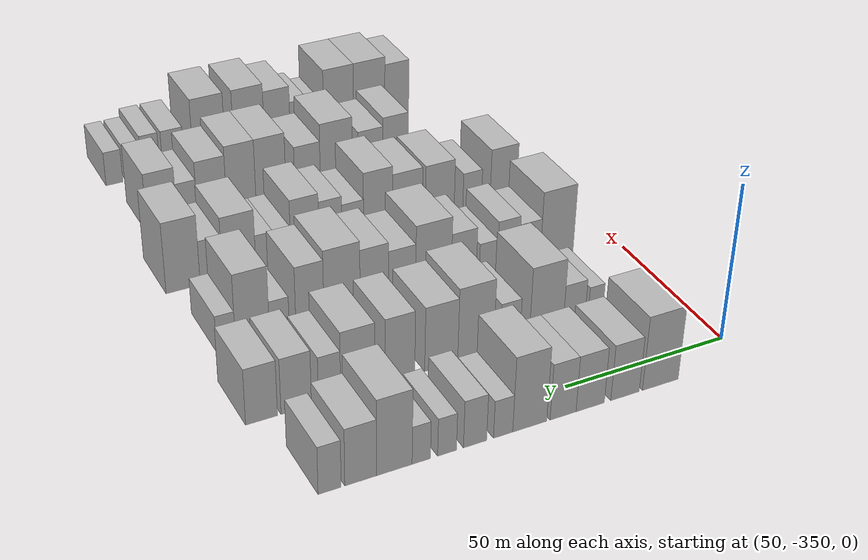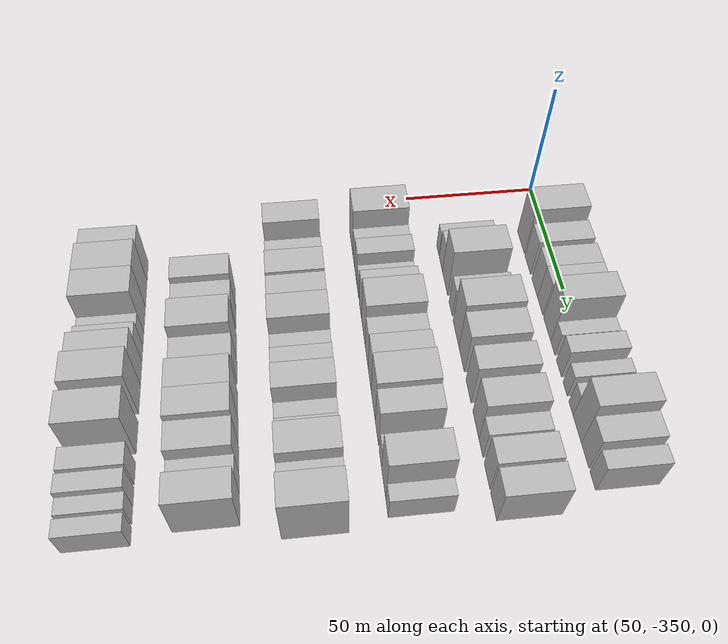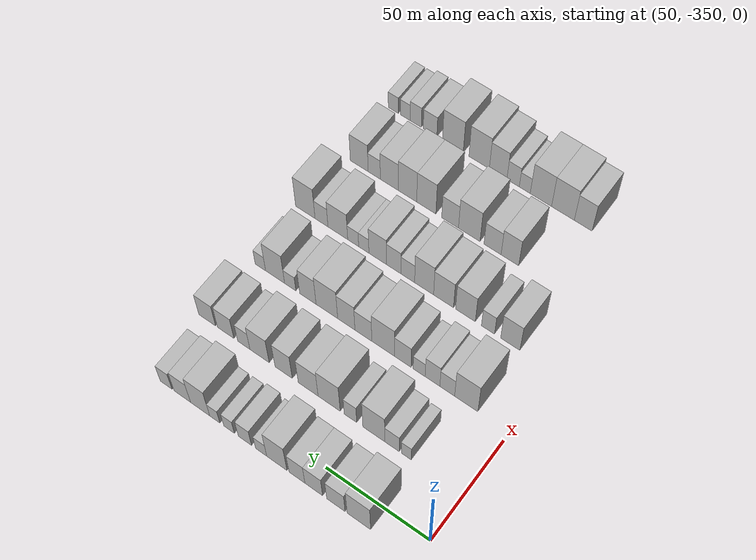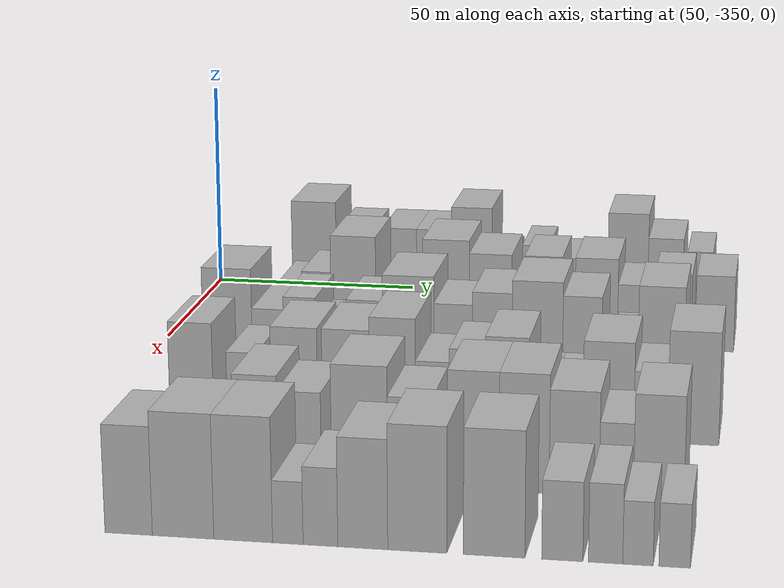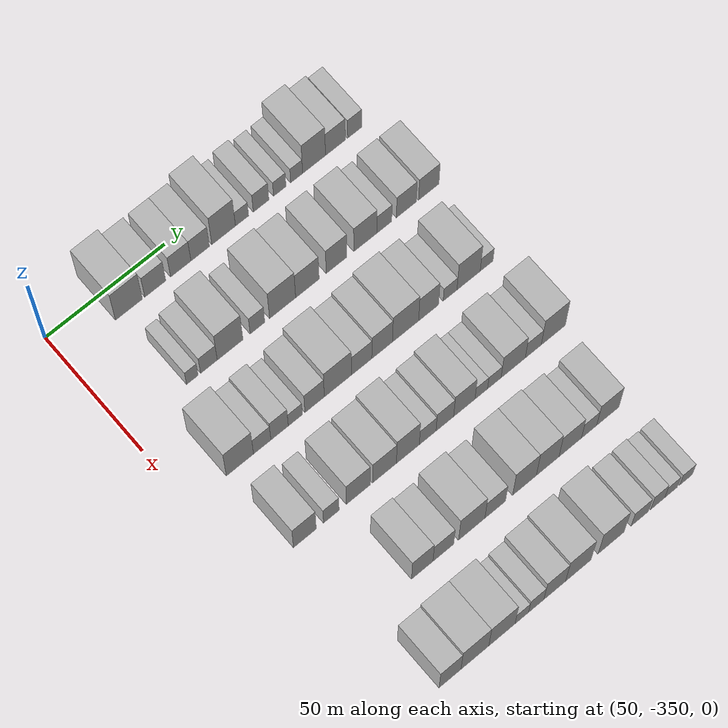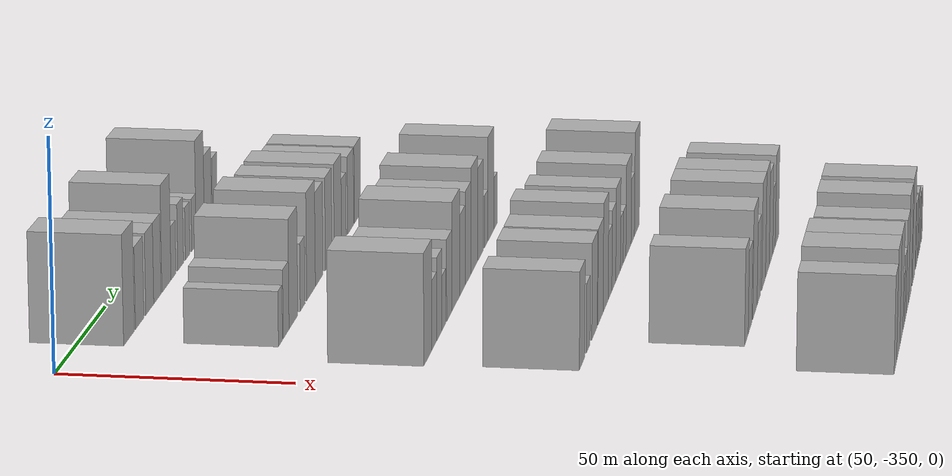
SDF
<sdf version="1.6">
 <world name="default">
  <model name="building_23">
   <static>1</static>
   <pose>50.0000 -323.2486 0 0.000000 0.000000 0.000000</pose>
   <link name="link">
    <pose>0 0 12.00 0 0 0</pose>
    <collision name="collision"><geometry><box><size>20.0000 11.2628 24.0000</size></box></geometry></collision>
    <visual name="visual">
     <cast_shadows>0</cast_shadows>
     <geometry><box><size>20.0000 11.2628 24.0000</size></box></geometry>
     <material>
      <script>
       <uri>model://HANNAS_wall/materials/scripts</uri>
       <uri>model://HANNAS_wall/materials/textures</uri>
       <name>vrc/HANNAS_wall</name>
      </script>
     </material>
    </visual>
   </link>
  </model>
  <model name="building_24">
   <static>1</static>
   <pose>50.0000 -312.2036 0 0.000000 0.000000 0.000000</pose>
   <link name="link">
    <pose>0 0 9.00 0 0 0</pose>
    <collision name="collision"><geometry><box><size>20.0000 8.8273 18.0000</size></box></geometry></collision>
    <visual name="visual">
     <cast_shadows>0</cast_shadows>
     <geometry><box><size>20.0000 8.8273 18.0000</size></box></geometry>
     <material>
      <script>
       <uri>model://HANNAS_wall/materials/scripts</uri>
       <uri>model://HANNAS_wall/materials/textures</uri>
       <name>vrc/HANNAS_wall</name>
      </script>
     </material>
    </visual>
   </link>
  </model>
  <model name="building_25">
   <static>1</static>
   <pose>50.0000 -301.4848 0 0.000000 0.000000 0.000000</pose>
   <link name="link">
    <pose>0 0 9.00 0 0 0</pose>
    <collision name="collision"><geometry><box><size>20.0000 8.6103 18.0000</size></box></geometry></collision>
    <visual name="visual">
     <cast_shadows>0</cast_shadows>
     <geometry><box><size>20.0000 8.6103 18.0000</size></box></geometry>
     <material>
      <script>
       <uri>model://HANNAS_wall/materials/scripts</uri>
       <uri>model://HANNAS_wall/materials/textures</uri>
       <name>vrc/HANNAS_wall</name>
      </script>
     </material>
    </visual>
   </link>
  </model>
  <model name="building_26">
   <static>1</static>
   <pose>50.0000 -293.2688 0 0.000000 0.000000 0.000000</pose>
   <link name="link">
    <pose>0 0 9.00 0 0 0</pose>
    <collision name="collision"><geometry><box><size>20.0000 7.8216 18.0000</size></box></geometry></collision>
    <visual name="visual">
     <cast_shadows>0</cast_shadows>
     <geometry><box><size>20.0000 7.8216 18.0000</size></box></geometry>
     <material>
      <script>
       <uri>model://HANNAS_wall/materials/scripts</uri>
       <uri>model://HANNAS_wall/materials/textures</uri>
       <name>vrc/HANNAS_wall</name>
      </script>
     </material>
    </visual>
   </link>
  </model>
  <model name="building_27">
   <static>1</static>
   <pose>50.0000 -283.3257 0 0.000000 0.000000 0.000000</pose>
   <link name="link">
    <pose>0 0 12.00 0 0 0</pose>
    <collision name="collision"><geometry><box><size>20.0000 10.0646 24.0000</size></box></geometry></collision>
    <visual name="visual">
     <cast_shadows>0</cast_shadows>
     <geometry><box><size>20.0000 10.0646 24.0000</size></box></geometry>
     <material>
      <script>
       <uri>model://HANNAS_wall/materials/scripts</uri>
       <uri>model://HANNAS_wall/materials/textures</uri>
       <name>vrc/HANNAS_wall</name>
      </script>
     </material>
    </visual>
   </link>
  </model>
  <model name="building_28">
   <static>1</static>
   <pose>50.0000 -275.4888 0 0.000000 0.000000 0.000000</pose>
   <link name="link">
    <pose>0 0 6.00 0 0 0</pose>
    <collision name="collision"><geometry><box><size>20.0000 5.6092 12.0000</size></box></geometry></collision>
    <visual name="visual">
     <cast_shadows>0</cast_shadows>
     <geometry><box><size>20.0000 5.6092 12.0000</size></box></geometry>
     <material>
      <script>
       <uri>model://HANNAS_wall/materials/scripts</uri>
       <uri>model://HANNAS_wall/materials/textures</uri>
       <name>vrc/HANNAS_wall</name>
      </script>
     </material>
    </visual>
   </link>
  </model>
  <model name="building_29">
   <static>1</static>
   <pose>50.0000 -267.3541 0 0.000000 0.000000 0.000000</pose>
   <link name="link">
    <pose>0 0 7.50 0 0 0</pose>
    <collision name="collision"><geometry><box><size>20.0000 6.6603 15.0000</size></box></geometry></collision>
    <visual name="visual">
     <cast_shadows>0</cast_shadows>
     <geometry><box><size>20.0000 6.6603 15.0000</size></box></geometry>
     <material>
      <script>
       <uri>model://HANNAS_wall/materials/scripts</uri>
       <uri>model://HANNAS_wall/materials/textures</uri>
       <name>vrc/HANNAS_wall</name>
      </script>
     </material>
    </visual>
   </link>
  </model>
  <model name="building_30">
   <static>1</static>
   <pose>50.0000 -259.3455 0 0.000000 0.000000 0.000000</pose>
   <link name="link">
    <pose>0 0 6.00 0 0 0</pose>
    <collision name="collision"><geometry><box><size>20.0000 5.3567 12.0000</size></box></geometry></collision>
    <visual name="visual">
     <cast_shadows>0</cast_shadows>
     <geometry><box><size>20.0000 5.3567 12.0000</size></box></geometry>
     <material>
      <script>
       <uri>model://HANNAS_wall/materials/scripts</uri>
       <uri>model://HANNAS_wall/materials/textures</uri>
       <name>vrc/HANNAS_wall</name>
      </script>
     </material>
    </visual>
   </link>
  </model>
  <model name="building_31">
   <static>1</static>
   <pose>50.0000 -252.0854 0 0.000000 0.000000 0.000000</pose>
   <link name="link">
    <pose>0 0 6.00 0 0 0</pose>
    <collision name="collision"><geometry><box><size>20.0000 5.1636 12.0000</size></box></geometry></collision>
    <visual name="visual">
     <cast_shadows>0</cast_shadows>
     <geometry><box><size>20.0000 5.1636 12.0000</size></box></geometry>
     <material>
      <script>
       <uri>model://HANNAS_wall/materials/scripts</uri>
       <uri>model://HANNAS_wall/materials/textures</uri>
       <name>vrc/HANNAS_wall</name>
      </script>
     </material>
    </visual>
   </link>
  </model>
  <model name="building_32">
   <static>1</static>
   <pose>50.0000 -244.5615 0 0.000000 0.000000 0.000000</pose>
   <link name="link">
    <pose>0 0 12.00 0 0 0</pose>
    <collision name="collision"><geometry><box><size>20.0000 9.8841 24.0000</size></box></geometry></collision>
    <visual name="visual">
     <cast_shadows>0</cast_shadows>
     <geometry><box><size>20.0000 9.8841 24.0000</size></box></geometry>
     <material>
      <script>
       <uri>model://HANNAS_wall/materials/scripts</uri>
       <uri>model://HANNAS_wall/materials/textures</uri>
       <name>vrc/HANNAS_wall</name>
      </script>
     </material>
    </visual>
   </link>
  </model>
  <model name="building_33">
   <static>1</static>
   <pose>50.0000 -235.3208 0 0.000000 0.000000 0.000000</pose>
   <link name="link">
    <pose>0 0 9.00 0 0 0</pose>
    <collision name="collision"><geometry><box><size>20.0000 8.5974 18.0000</size></box></geometry></collision>
    <visual name="visual">
     <cast_shadows>0</cast_shadows>
     <geometry><box><size>20.0000 8.5974 18.0000</size></box></geometry>
     <material>
      <script>
       <uri>model://HANNAS_wall/materials/scripts</uri>
       <uri>model://HANNAS_wall/materials/textures</uri>
       <name>vrc/HANNAS_wall</name>
      </script>
     </material>
    </visual>
   </link>
  </model>
  <model name="building_34">
   <static>1</static>
   <pose>50.0000 -226.9322 0 0.000000 0.000000 0.000000</pose>
   <link name="link">
    <pose>0 0 7.50 0 0 0</pose>
    <collision name="collision"><geometry><box><size>20.0000 6.1797 15.0000</size></box></geometry></collision>
    <visual name="visual">
     <cast_shadows>0</cast_shadows>
     <geometry><box><size>20.0000 6.1797 15.0000</size></box></geometry>
     <material>
      <script>
       <uri>model://HANNAS_wall/materials/scripts</uri>
       <uri>model://HANNAS_wall/materials/textures</uri>
       <name>vrc/HANNAS_wall</name>
      </script>
     </material>
    </visual>
   </link>
  </model>
  <model name="building_150">
   <static>1</static>
   <pose>82.0000 -322.6772 0 0.000000 0.000000 0.000000</pose>
   <link name="link">
    <pose>0 0 6.00 0 0 0</pose>
    <collision name="collision"><geometry><box><size>20.0000 4.8380 12.0000</size></box></geometry></collision>
    <visual name="visual">
     <cast_shadows>0</cast_shadows>
     <geometry><box><size>20.0000 4.8380 12.0000</size></box></geometry>
     <material>
      <script>
       <uri>model://HANNAS_wall/materials/scripts</uri>
       <uri>model://HANNAS_wall/materials/textures</uri>
       <name>vrc/HANNAS_wall</name>
      </script>
     </material>
    </visual>
   </link>
  </model>
  <model name="building_151">
   <static>1</static>
   <pose>82.0000 -315.7602 0 0.000000 0.000000 0.000000</pose>
   <link name="link">
    <pose>0 0 7.50 0 0 0</pose>
    <collision name="collision"><geometry><box><size>20.0000 6.9961 15.0000</size></box></geometry></collision>
    <visual name="visual">
     <cast_shadows>0</cast_shadows>
     <geometry><box><size>20.0000 6.9961 15.0000</size></box></geometry>
     <material>
      <script>
       <uri>model://HANNAS_wall/materials/scripts</uri>
       <uri>model://HANNAS_wall/materials/textures</uri>
       <name>vrc/HANNAS_wall</name>
      </script>
     </material>
    </visual>
   </link>
  </model>
  <model name="building_152">
   <static>1</static>
   <pose>82.0000 -306.8676 0 0.000000 0.000000 0.000000</pose>
   <link name="link">
    <pose>0 0 12.00 0 0 0</pose>
    <collision name="collision"><geometry><box><size>20.0000 10.7889 24.0000</size></box></geometry></collision>
    <visual name="visual">
     <cast_shadows>0</cast_shadows>
     <geometry><box><size>20.0000 10.7889 24.0000</size></box></geometry>
     <material>
      <script>
       <uri>model://HANNAS_wall/materials/scripts</uri>
       <uri>model://HANNAS_wall/materials/textures</uri>
       <name>vrc/HANNAS_wall</name>
      </script>
     </material>
    </visual>
   </link>
  </model>
  <model name="building_153">
   <static>1</static>
   <pose>82.0000 -295.3768 0 0.000000 0.000000 0.000000</pose>
   <link name="link">
    <pose>0 0 7.50 0 0 0</pose>
    <collision name="collision"><geometry><box><size>20.0000 6.1929 15.0000</size></box></geometry></collision>
    <visual name="visual">
     <cast_shadows>0</cast_shadows>
     <geometry><box><size>20.0000 6.1929 15.0000</size></box></geometry>
     <material>
      <script>
       <uri>model://HANNAS_wall/materials/scripts</uri>
       <uri>model://HANNAS_wall/materials/textures</uri>
       <name>vrc/HANNAS_wall</name>
      </script>
     </material>
    </visual>
   </link>
  </model>
  <model name="building_154">
   <static>1</static>
   <pose>82.0000 -284.7476 0 0.000000 0.000000 0.000000</pose>
   <link name="link">
    <pose>0 0 12.00 0 0 0</pose>
    <collision name="collision"><geometry><box><size>20.0000 11.0655 24.0000</size></box></geometry></collision>
    <visual name="visual">
     <cast_shadows>0</cast_shadows>
     <geometry><box><size>20.0000 11.0655 24.0000</size></box></geometry>
     <material>
      <script>
       <uri>model://HANNAS_wall/materials/scripts</uri>
       <uri>model://HANNAS_wall/materials/textures</uri>
       <name>vrc/HANNAS_wall</name>
      </script>
     </material>
    </visual>
   </link>
  </model>
  <model name="building_155">
   <static>1</static>
   <pose>82.0000 -274.2050 0 0.000000 0.000000 0.000000</pose>
   <link name="link">
    <pose>0 0 10.50 0 0 0</pose>
    <collision name="collision"><geometry><box><size>20.0000 10.0197 21.0000</size></box></geometry></collision>
    <visual name="visual">
     <cast_shadows>0</cast_shadows>
     <geometry><box><size>20.0000 10.0197 21.0000</size></box></geometry>
     <material>
      <script>
       <uri>model://HANNAS_wall/materials/scripts</uri>
       <uri>model://HANNAS_wall/materials/textures</uri>
       <name>vrc/HANNAS_wall</name>
      </script>
     </material>
    </visual>
   </link>
  </model>
  <model name="building_156">
   <static>1</static>
   <pose>82.0000 -261.7766 0 0.000000 0.000000 0.000000</pose>
   <link name="link">
    <pose>0 0 10.50 0 0 0</pose>
    <collision name="collision"><geometry><box><size>20.0000 8.8370 21.0000</size></box></geometry></collision>
    <visual name="visual">
     <cast_shadows>0</cast_shadows>
     <geometry><box><size>20.0000 8.8370 21.0000</size></box></geometry>
     <material>
      <script>
       <uri>model://HANNAS_wall/materials/scripts</uri>
       <uri>model://HANNAS_wall/materials/textures</uri>
       <name>vrc/HANNAS_wall</name>
      </script>
     </material>
    </visual>
   </link>
  </model>
  <model name="building_157">
   <static>1</static>
   <pose>82.0000 -249.3778 0 0.000000 0.000000 0.000000</pose>
   <link name="link">
    <pose>0 0 10.50 0 0 0</pose>
    <collision name="collision"><geometry><box><size>20.0000 9.9606 21.0000</size></box></geometry></collision>
    <visual name="visual">
     <cast_shadows>0</cast_shadows>
     <geometry><box><size>20.0000 9.9606 21.0000</size></box></geometry>
     <material>
      <script>
       <uri>model://HANNAS_wall/materials/scripts</uri>
       <uri>model://HANNAS_wall/materials/textures</uri>
       <name>vrc/HANNAS_wall</name>
      </script>
     </material>
    </visual>
   </link>
  </model>
  <model name="building_158">
   <static>1</static>
   <pose>82.0000 -241.2118 0 0.000000 0.000000 0.000000</pose>
   <link name="link">
    <pose>0 0 7.50 0 0 0</pose>
    <collision name="collision"><geometry><box><size>20.0000 6.3715 15.0000</size></box></geometry></collision>
    <visual name="visual">
     <cast_shadows>0</cast_shadows>
     <geometry><box><size>20.0000 6.3715 15.0000</size></box></geometry>
     <material>
      <script>
       <uri>model://HANNAS_wall/materials/scripts</uri>
       <uri>model://HANNAS_wall/materials/textures</uri>
       <name>vrc/HANNAS_wall</name>
      </script>
     </material>
    </visual>
   </link>
  </model>
  <model name="building_159">
   <static>1</static>
   <pose>82.0000 -231.7152 0 0.000000 0.000000 0.000000</pose>
   <link name="link">
    <pose>0 0 9.00 0 0 0</pose>
    <collision name="collision"><geometry><box><size>20.0000 8.6216 18.0000</size></box></geometry></collision>
    <visual name="visual">
     <cast_shadows>0</cast_shadows>
     <geometry><box><size>20.0000 8.6216 18.0000</size></box></geometry>
     <material>
      <script>
       <uri>model://HANNAS_wall/materials/scripts</uri>
       <uri>model://HANNAS_wall/materials/textures</uri>
       <name>vrc/HANNAS_wall</name>
      </script>
     </material>
    </visual>
   </link>
  </model>
  <model name="building_160">
   <static>1</static>
   <pose>82.0000 -221.9595 0 0.000000 0.000000 0.000000</pose>
   <link name="link">
    <pose>0 0 9.00 0 0 0</pose>
    <collision name="collision"><geometry><box><size>20.0000 8.8898 18.0000</size></box></geometry></collision>
    <visual name="visual">
     <cast_shadows>0</cast_shadows>
     <geometry><box><size>20.0000 8.8898 18.0000</size></box></geometry>
     <material>
      <script>
       <uri>model://HANNAS_wall/materials/scripts</uri>
       <uri>model://HANNAS_wall/materials/textures</uri>
       <name>vrc/HANNAS_wall</name>
      </script>
     </material>
    </visual>
   </link>
  </model>
  <model name="building_259">
   <static>1</static>
   <pose>114.0000 -329.1435 0 0.000000 0.000000 0.000000</pose>
   <link name="link">
    <pose>0 0 12.00 0 0 0</pose>
    <collision name="collision"><geometry><box><size>20.0000 11.2822 24.0000</size></box></geometry></collision>
    <visual name="visual">
     <cast_shadows>0</cast_shadows>
     <geometry><box><size>20.0000 11.2822 24.0000</size></box></geometry>
     <material>
      <script>
       <uri>model://HANNAS_wall/materials/scripts</uri>
       <uri>model://HANNAS_wall/materials/textures</uri>
       <name>vrc/HANNAS_wall</name>
      </script>
     </material>
    </visual>
   </link>
  </model>
  <model name="building_260">
   <static>1</static>
   <pose>114.0000 -319.8880 0 0.000000 0.000000 0.000000</pose>
   <link name="link">
    <pose>0 0 7.50 0 0 0</pose>
    <collision name="collision"><geometry><box><size>20.0000 7.2289 15.0000</size></box></geometry></collision>
    <visual name="visual">
     <cast_shadows>0</cast_shadows>
     <geometry><box><size>20.0000 7.2289 15.0000</size></box></geometry>
     <material>
      <script>
       <uri>model://HANNAS_wall/materials/scripts</uri>
       <uri>model://HANNAS_wall/materials/textures</uri>
       <name>vrc/HANNAS_wall</name>
      </script>
     </material>
    </visual>
   </link>
  </model>
  <model name="building_261">
   <static>1</static>
   <pose>114.0000 -312.6407 0 0.000000 0.000000 0.000000</pose>
   <link name="link">
    <pose>0 0 9.00 0 0 0</pose>
    <collision name="collision"><geometry><box><size>20.0000 7.2657 18.0000</size></box></geometry></collision>
    <visual name="visual">
     <cast_shadows>0</cast_shadows>
     <geometry><box><size>20.0000 7.2657 18.0000</size></box></geometry>
     <material>
      <script>
       <uri>model://HANNAS_wall/materials/scripts</uri>
       <uri>model://HANNAS_wall/materials/textures</uri>
       <name>vrc/HANNAS_wall</name>
      </script>
     </material>
    </visual>
   </link>
  </model>
  <model name="building_262">
   <static>1</static>
   <pose>114.0000 -306.0289 0 0.000000 0.000000 0.000000</pose>
   <link name="link">
    <pose>0 0 6.00 0 0 0</pose>
    <collision name="collision"><geometry><box><size>20.0000 5.9579 12.0000</size></box></geometry></collision>
    <visual name="visual">
     <cast_shadows>0</cast_shadows>
     <geometry><box><size>20.0000 5.9579 12.0000</size></box></geometry>
     <material>
      <script>
       <uri>model://HANNAS_wall/materials/scripts</uri>
       <uri>model://HANNAS_wall/materials/textures</uri>
       <name>vrc/HANNAS_wall</name>
      </script>
     </material>
    </visual>
   </link>
  </model>
  <model name="building_263">
   <static>1</static>
   <pose>114.0000 -297.9624 0 0.000000 0.000000 0.000000</pose>
   <link name="link">
    <pose>0 0 9.00 0 0 0</pose>
    <collision name="collision"><geometry><box><size>20.0000 8.1750 18.0000</size></box></geometry></collision>
    <visual name="visual">
     <cast_shadows>0</cast_shadows>
     <geometry><box><size>20.0000 8.1750 18.0000</size></box></geometry>
     <material>
      <script>
       <uri>model://HANNAS_wall/materials/scripts</uri>
       <uri>model://HANNAS_wall/materials/textures</uri>
       <name>vrc/HANNAS_wall</name>
      </script>
     </material>
    </visual>
   </link>
  </model>
  <model name="building_264">
   <static>1</static>
   <pose>114.0000 -288.1291 0 0.000000 0.000000 0.000000</pose>
   <link name="link">
    <pose>0 0 12.00 0 0 0</pose>
    <collision name="collision"><geometry><box><size>20.0000 11.4916 24.0000</size></box></geometry></collision>
    <visual name="visual">
     <cast_shadows>0</cast_shadows>
     <geometry><box><size>20.0000 11.4916 24.0000</size></box></geometry>
     <material>
      <script>
       <uri>model://HANNAS_wall/materials/scripts</uri>
       <uri>model://HANNAS_wall/materials/textures</uri>
       <name>vrc/HANNAS_wall</name>
      </script>
     </material>
    </visual>
   </link>
  </model>
  <model name="building_265">
   <static>1</static>
   <pose>114.0000 -278.0862 0 0.000000 0.000000 0.000000</pose>
   <link name="link">
    <pose>0 0 9.00 0 0 0</pose>
    <collision name="collision"><geometry><box><size>20.0000 8.5942 18.0000</size></box></geometry></collision>
    <visual name="visual">
     <cast_shadows>0</cast_shadows>
     <geometry><box><size>20.0000 8.5942 18.0000</size></box></geometry>
     <material>
      <script>
       <uri>model://HANNAS_wall/materials/scripts</uri>
       <uri>model://HANNAS_wall/materials/textures</uri>
       <name>vrc/HANNAS_wall</name>
      </script>
     </material>
    </visual>
   </link>
  </model>
  <model name="building_266">
   <static>1</static>
   <pose>114.0000 -269.3728 0 0.000000 0.000000 0.000000</pose>
   <link name="link">
    <pose>0 0 10.50 0 0 0</pose>
    <collision name="collision"><geometry><box><size>20.0000 8.8327 21.0000</size></box></geometry></collision>
    <visual name="visual">
     <cast_shadows>0</cast_shadows>
     <geometry><box><size>20.0000 8.8327 21.0000</size></box></geometry>
     <material>
      <script>
       <uri>model://HANNAS_wall/materials/scripts</uri>
       <uri>model://HANNAS_wall/materials/textures</uri>
       <name>vrc/HANNAS_wall</name>
      </script>
     </material>
    </visual>
   </link>
  </model>
  <model name="building_267">
   <static>1</static>
   <pose>114.0000 -259.3787 0 0.000000 0.000000 0.000000</pose>
   <link name="link">
    <pose>0 0 12.00 0 0 0</pose>
    <collision name="collision"><geometry><box><size>20.0000 11.1553 24.0000</size></box></geometry></collision>
    <visual name="visual">
     <cast_shadows>0</cast_shadows>
     <geometry><box><size>20.0000 11.1553 24.0000</size></box></geometry>
     <material>
      <script>
       <uri>model://HANNAS_wall/materials/scripts</uri>
       <uri>model://HANNAS_wall/materials/textures</uri>
       <name>vrc/HANNAS_wall</name>
      </script>
     </material>
    </visual>
   </link>
  </model>
  <model name="building_268">
   <static>1</static>
   <pose>114.0000 -249.5351 0 0.000000 0.000000 0.000000</pose>
   <link name="link">
    <pose>0 0 10.50 0 0 0</pose>
    <collision name="collision"><geometry><box><size>20.0000 8.5320 21.0000</size></box></geometry></collision>
    <visual name="visual">
     <cast_shadows>0</cast_shadows>
     <geometry><box><size>20.0000 8.5320 21.0000</size></box></geometry>
     <material>
      <script>
       <uri>model://HANNAS_wall/materials/scripts</uri>
       <uri>model://HANNAS_wall/materials/textures</uri>
       <name>vrc/HANNAS_wall</name>
      </script>
     </material>
    </visual>
   </link>
  </model>
  <model name="building_269">
   <static>1</static>
   <pose>114.0000 -240.3122 0 0.000000 0.000000 0.000000</pose>
   <link name="link">
    <pose>0 0 6.00 0 0 0</pose>
    <collision name="collision"><geometry><box><size>20.0000 5.9138 12.0000</size></box></geometry></collision>
    <visual name="visual">
     <cast_shadows>0</cast_shadows>
     <geometry><box><size>20.0000 5.9138 12.0000</size></box></geometry>
     <material>
      <script>
       <uri>model://HANNAS_wall/materials/scripts</uri>
       <uri>model://HANNAS_wall/materials/textures</uri>
       <name>vrc/HANNAS_wall</name>
      </script>
     </material>
    </visual>
   </link>
  </model>
  <model name="building_270">
   <static>1</static>
   <pose>114.0000 -232.3166 0 0.000000 0.000000 0.000000</pose>
   <link name="link">
    <pose>0 0 12.00 0 0 0</pose>
    <collision name="collision"><geometry><box><size>20.0000 10.0772 24.0000</size></box></geometry></collision>
    <visual name="visual">
     <cast_shadows>0</cast_shadows>
     <geometry><box><size>20.0000 10.0772 24.0000</size></box></geometry>
     <material>
      <script>
       <uri>model://HANNAS_wall/materials/scripts</uri>
       <uri>model://HANNAS_wall/materials/textures</uri>
       <name>vrc/HANNAS_wall</name>
      </script>
     </material>
    </visual>
   </link>
  </model>
  <model name="building_271">
   <static>1</static>
   <pose>114.0000 -224.5036 0 0.000000 0.000000 0.000000</pose>
   <link name="link">
    <pose>0 0 6.00 0 0 0</pose>
    <collision name="collision"><geometry><box><size>20.0000 5.5488 12.0000</size></box></geometry></collision>
    <visual name="visual">
     <cast_shadows>0</cast_shadows>
     <geometry><box><size>20.0000 5.5488 12.0000</size></box></geometry>
     <material>
      <script>
       <uri>model://HANNAS_wall/materials/scripts</uri>
       <uri>model://HANNAS_wall/materials/textures</uri>
       <name>vrc/HANNAS_wall</name>
      </script>
     </material>
    </visual>
   </link>
  </model>
  <model name="building_377">
   <static>1</static>
   <pose>146.0000 -328.8128 0 0.000000 0.000000 0.000000</pose>
   <link name="link">
    <pose>0 0 10.50 0 0 0</pose>
    <collision name="collision"><geometry><box><size>20.0000 9.4450 21.0000</size></box></geometry></collision>
    <visual name="visual">
     <cast_shadows>0</cast_shadows>
     <geometry><box><size>20.0000 9.4450 21.0000</size></box></geometry>
     <material>
      <script>
       <uri>model://HANNAS_wall/materials/scripts</uri>
       <uri>model://HANNAS_wall/materials/textures</uri>
       <name>vrc/HANNAS_wall</name>
      </script>
     </material>
    </visual>
   </link>
  </model>
  <model name="building_378">
   <static>1</static>
   <pose>146.0000 -317.8348 0 0.000000 0.000000 0.000000</pose>
   <link name="link">
    <pose>0 0 7.50 0 0 0</pose>
    <collision name="collision"><geometry><box><size>20.0000 6.5110 15.0000</size></box></geometry></collision>
    <visual name="visual">
     <cast_shadows>0</cast_shadows>
     <geometry><box><size>20.0000 6.5110 15.0000</size></box></geometry>
     <material>
      <script>
       <uri>model://HANNAS_wall/materials/scripts</uri>
       <uri>model://HANNAS_wall/materials/textures</uri>
       <name>vrc/HANNAS_wall</name>
      </script>
     </material>
    </visual>
   </link>
  </model>
  <model name="building_379">
   <static>1</static>
   <pose>146.0000 -306.6266 0 0.000000 0.000000 0.000000</pose>
   <link name="link">
    <pose>0 0 10.50 0 0 0</pose>
    <collision name="collision"><geometry><box><size>20.0000 9.9055 21.0000</size></box></geometry></collision>
    <visual name="visual">
     <cast_shadows>0</cast_shadows>
     <geometry><box><size>20.0000 9.9055 21.0000</size></box></geometry>
     <material>
      <script>
       <uri>model://HANNAS_wall/materials/scripts</uri>
       <uri>model://HANNAS_wall/materials/textures</uri>
       <name>vrc/HANNAS_wall</name>
      </script>
     </material>
    </visual>
   </link>
  </model>
  <model name="building_380">
   <static>1</static>
   <pose>146.0000 -295.6511 0 0.000000 0.000000 0.000000</pose>
   <link name="link">
    <pose>0 0 10.50 0 0 0</pose>
    <collision name="collision"><geometry><box><size>20.0000 10.0453 21.0000</size></box></geometry></collision>
    <visual name="visual">
     <cast_shadows>0</cast_shadows>
     <geometry><box><size>20.0000 10.0453 21.0000</size></box></geometry>
     <material>
      <script>
       <uri>model://HANNAS_wall/materials/scripts</uri>
       <uri>model://HANNAS_wall/materials/textures</uri>
       <name>vrc/HANNAS_wall</name>
      </script>
     </material>
    </visual>
   </link>
  </model>
  <model name="building_381">
   <static>1</static>
   <pose>146.0000 -285.8003 0 0.000000 0.000000 0.000000</pose>
   <link name="link">
    <pose>0 0 12.00 0 0 0</pose>
    <collision name="collision"><geometry><box><size>20.0000 9.6563 24.0000</size></box></geometry></collision>
    <visual name="visual">
     <cast_shadows>0</cast_shadows>
     <geometry><box><size>20.0000 9.6563 24.0000</size></box></geometry>
     <material>
      <script>
       <uri>model://HANNAS_wall/materials/scripts</uri>
       <uri>model://HANNAS_wall/materials/textures</uri>
       <name>vrc/HANNAS_wall</name>
      </script>
     </material>
    </visual>
   </link>
  </model>
  <model name="building_382">
   <static>1</static>
   <pose>146.0000 -277.4421 0 0.000000 0.000000 0.000000</pose>
   <link name="link">
    <pose>0 0 7.50 0 0 0</pose>
    <collision name="collision"><geometry><box><size>20.0000 7.0602 15.0000</size></box></geometry></collision>
    <visual name="visual">
     <cast_shadows>0</cast_shadows>
     <geometry><box><size>20.0000 7.0602 15.0000</size></box></geometry>
     <material>
      <script>
       <uri>model://HANNAS_wall/materials/scripts</uri>
       <uri>model://HANNAS_wall/materials/textures</uri>
       <name>vrc/HANNAS_wall</name>
      </script>
     </material>
    </visual>
   </link>
  </model>
  <model name="building_383">
   <static>1</static>
   <pose>146.0000 -270.1694 0 0.000000 0.000000 0.000000</pose>
   <link name="link">
    <pose>0 0 9.00 0 0 0</pose>
    <collision name="collision"><geometry><box><size>20.0000 7.4853 18.0000</size></box></geometry></collision>
    <visual name="visual">
     <cast_shadows>0</cast_shadows>
     <geometry><box><size>20.0000 7.4853 18.0000</size></box></geometry>
     <material>
      <script>
       <uri>model://HANNAS_wall/materials/scripts</uri>
       <uri>model://HANNAS_wall/materials/textures</uri>
       <name>vrc/HANNAS_wall</name>
      </script>
     </material>
    </visual>
   </link>
  </model>
  <model name="building_384">
   <static>1</static>
   <pose>146.0000 -261.8766 0 0.000000 0.000000 0.000000</pose>
   <link name="link">
    <pose>0 0 10.50 0 0 0</pose>
    <collision name="collision"><geometry><box><size>20.0000 9.1002 21.0000</size></box></geometry></collision>
    <visual name="visual">
     <cast_shadows>0</cast_shadows>
     <geometry><box><size>20.0000 9.1002 21.0000</size></box></geometry>
     <material>
      <script>
       <uri>model://HANNAS_wall/materials/scripts</uri>
       <uri>model://HANNAS_wall/materials/textures</uri>
       <name>vrc/HANNAS_wall</name>
      </script>
     </material>
    </visual>
   </link>
  </model>
  <model name="building_385">
   <static>1</static>
   <pose>146.0000 -254.6417 0 0.000000 0.000000 0.000000</pose>
   <link name="link">
    <pose>0 0 6.00 0 0 0</pose>
    <collision name="collision"><geometry><box><size>20.0000 5.3696 12.0000</size></box></geometry></collision>
    <visual name="visual">
     <cast_shadows>0</cast_shadows>
     <geometry><box><size>20.0000 5.3696 12.0000</size></box></geometry>
     <material>
      <script>
       <uri>model://HANNAS_wall/materials/scripts</uri>
       <uri>model://HANNAS_wall/materials/textures</uri>
       <name>vrc/HANNAS_wall</name>
      </script>
     </material>
    </visual>
   </link>
  </model>
  <model name="building_386">
   <static>1</static>
   <pose>146.0000 -249.0726 0 0.000000 0.000000 0.000000</pose>
   <link name="link">
    <pose>0 0 6.00 0 0 0</pose>
    <collision name="collision"><geometry><box><size>20.0000 5.7687 12.0000</size></box></geometry></collision>
    <visual name="visual">
     <cast_shadows>0</cast_shadows>
     <geometry><box><size>20.0000 5.7687 12.0000</size></box></geometry>
     <material>
      <script>
       <uri>model://HANNAS_wall/materials/scripts</uri>
       <uri>model://HANNAS_wall/materials/textures</uri>
       <name>vrc/HANNAS_wall</name>
      </script>
     </material>
    </visual>
   </link>
  </model>
  <model name="building_387">
   <static>1</static>
   <pose>146.0000 -240.9726 0 0.000000 0.000000 0.000000</pose>
   <link name="link">
    <pose>0 0 10.50 0 0 0</pose>
    <collision name="collision"><geometry><box><size>20.0000 10.4313 21.0000</size></box></geometry></collision>
    <visual name="visual">
     <cast_shadows>0</cast_shadows>
     <geometry><box><size>20.0000 10.4313 21.0000</size></box></geometry>
     <material>
      <script>
       <uri>model://HANNAS_wall/materials/scripts</uri>
       <uri>model://HANNAS_wall/materials/textures</uri>
       <name>vrc/HANNAS_wall</name>
      </script>
     </material>
    </visual>
   </link>
  </model>
  <model name="building_388">
   <static>1</static>
   <pose>146.0000 -232.2974 0 0.000000 0.000000 0.000000</pose>
   <link name="link">
    <pose>0 0 7.50 0 0 0</pose>
    <collision name="collision"><geometry><box><size>20.0000 6.9192 15.0000</size></box></geometry></collision>
    <visual name="visual">
     <cast_shadows>0</cast_shadows>
     <geometry><box><size>20.0000 6.9192 15.0000</size></box></geometry>
     <material>
      <script>
       <uri>model://HANNAS_wall/materials/scripts</uri>
       <uri>model://HANNAS_wall/materials/textures</uri>
       <name>vrc/HANNAS_wall</name>
      </script>
     </material>
    </visual>
   </link>
  </model>
  <model name="building_389">
   <static>1</static>
   <pose>146.0000 -223.6208 0 0.000000 0.000000 0.000000</pose>
   <link name="link">
    <pose>0 0 12.00 0 0 0</pose>
    <collision name="collision"><geometry><box><size>20.0000 10.4339 24.0000</size></box></geometry></collision>
    <visual name="visual">
     <cast_shadows>0</cast_shadows>
     <geometry><box><size>20.0000 10.4339 24.0000</size></box></geometry>
     <material>
      <script>
       <uri>model://HANNAS_wall/materials/scripts</uri>
       <uri>model://HANNAS_wall/materials/textures</uri>
       <name>vrc/HANNAS_wall</name>
      </script>
     </material>
    </visual>
   </link>
  </model>
  <model name="building_500">
   <static>1</static>
   <pose>178.0000 -307.1877 0 0.000000 0.000000 0.000000</pose>
   <link name="link">
    <pose>0 0 10.50 0 0 0</pose>
    <collision name="collision"><geometry><box><size>20.0000 8.9265 21.0000</size></box></geometry></collision>
    <visual name="visual">
     <cast_shadows>0</cast_shadows>
     <geometry><box><size>20.0000 8.9265 21.0000</size></box></geometry>
     <material>
      <script>
       <uri>model://HANNAS_wall/materials/scripts</uri>
       <uri>model://HANNAS_wall/materials/textures</uri>
       <name>vrc/HANNAS_wall</name>
      </script>
     </material>
    </visual>
   </link>
  </model>
  <model name="building_501">
   <static>1</static>
   <pose>178.0000 -298.3840 0 0.000000 0.000000 0.000000</pose>
   <link name="link">
    <pose>0 0 9.00 0 0 0</pose>
    <collision name="collision"><geometry><box><size>20.0000 8.6809 18.0000</size></box></geometry></collision>
    <visual name="visual">
     <cast_shadows>0</cast_shadows>
     <geometry><box><size>20.0000 8.6809 18.0000</size></box></geometry>
     <material>
      <script>
       <uri>model://HANNAS_wall/materials/scripts</uri>
       <uri>model://HANNAS_wall/materials/textures</uri>
       <name>vrc/HANNAS_wall</name>
      </script>
     </material>
    </visual>
   </link>
  </model>
  <model name="building_502">
   <static>1</static>
   <pose>178.0000 -286.5034 0 0.000000 0.000000 0.000000</pose>
   <link name="link">
    <pose>0 0 12.00 0 0 0</pose>
    <collision name="collision"><geometry><box><size>20.0000 11.0802 24.0000</size></box></geometry></collision>
    <visual name="visual">
     <cast_shadows>0</cast_shadows>
     <geometry><box><size>20.0000 11.0802 24.0000</size></box></geometry>
     <material>
      <script>
       <uri>model://HANNAS_wall/materials/scripts</uri>
       <uri>model://HANNAS_wall/materials/textures</uri>
       <name>vrc/HANNAS_wall</name>
      </script>
     </material>
    </visual>
   </link>
  </model>
  <model name="building_503">
   <static>1</static>
   <pose>178.0000 -276.6010 0 0.000000 0.000000 0.000000</pose>
   <link name="link">
    <pose>0 0 9.00 0 0 0</pose>
    <collision name="collision"><geometry><box><size>20.0000 8.7247 18.0000</size></box></geometry></collision>
    <visual name="visual">
     <cast_shadows>0</cast_shadows>
     <geometry><box><size>20.0000 8.7247 18.0000</size></box></geometry>
     <material>
      <script>
       <uri>model://HANNAS_wall/materials/scripts</uri>
       <uri>model://HANNAS_wall/materials/textures</uri>
       <name>vrc/HANNAS_wall</name>
      </script>
     </material>
    </visual>
   </link>
  </model>
  <model name="building_504">
   <static>1</static>
   <pose>178.0000 -264.2045 0 0.000000 0.000000 0.000000</pose>
   <link name="link">
    <pose>0 0 12.00 0 0 0</pose>
    <collision name="collision"><geometry><box><size>20.0000 10.0682 24.0000</size></box></geometry></collision>
    <visual name="visual">
     <cast_shadows>0</cast_shadows>
     <geometry><box><size>20.0000 10.0682 24.0000</size></box></geometry>
     <material>
      <script>
       <uri>model://HANNAS_wall/materials/scripts</uri>
       <uri>model://HANNAS_wall/materials/textures</uri>
       <name>vrc/HANNAS_wall</name>
      </script>
     </material>
    </visual>
   </link>
  </model>
  <model name="building_505">
   <static>1</static>
   <pose>178.0000 -254.3392 0 0.000000 0.000000 0.000000</pose>
   <link name="link">
    <pose>0 0 12.00 0 0 0</pose>
    <collision name="collision"><geometry><box><size>20.0000 9.6625 24.0000</size></box></geometry></collision>
    <visual name="visual">
     <cast_shadows>0</cast_shadows>
     <geometry><box><size>20.0000 9.6625 24.0000</size></box></geometry>
     <material>
      <script>
       <uri>model://HANNAS_wall/materials/scripts</uri>
       <uri>model://HANNAS_wall/materials/textures</uri>
       <name>vrc/HANNAS_wall</name>
      </script>
     </material>
    </visual>
   </link>
  </model>
  <model name="building_506">
   <static>1</static>
   <pose>178.0000 -244.6962 0 0.000000 0.000000 0.000000</pose>
   <link name="link">
    <pose>0 0 10.50 0 0 0</pose>
    <collision name="collision"><geometry><box><size>20.0000 9.6234 21.0000</size></box></geometry></collision>
    <visual name="visual">
     <cast_shadows>0</cast_shadows>
     <geometry><box><size>20.0000 9.6234 21.0000</size></box></geometry>
     <material>
      <script>
       <uri>model://HANNAS_wall/materials/scripts</uri>
       <uri>model://HANNAS_wall/materials/textures</uri>
       <name>vrc/HANNAS_wall</name>
      </script>
     </material>
    </visual>
   </link>
  </model>
  <model name="building_507">
   <static>1</static>
   <pose>178.0000 -236.6156 0 0.000000 0.000000 0.000000</pose>
   <link name="link">
    <pose>0 0 7.50 0 0 0</pose>
    <collision name="collision"><geometry><box><size>20.0000 6.5379 15.0000</size></box></geometry></collision>
    <visual name="visual">
     <cast_shadows>0</cast_shadows>
     <geometry><box><size>20.0000 6.5379 15.0000</size></box></geometry>
     <material>
      <script>
       <uri>model://HANNAS_wall/materials/scripts</uri>
       <uri>model://HANNAS_wall/materials/textures</uri>
       <name>vrc/HANNAS_wall</name>
      </script>
     </material>
    </visual>
   </link>
  </model>
  <model name="building_508">
   <static>1</static>
   <pose>178.0000 -228.5248 0 0.000000 0.000000 0.000000</pose>
   <link name="link">
    <pose>0 0 10.50 0 0 0</pose>
    <collision name="collision"><geometry><box><size>20.0000 9.6437 21.0000</size></box></geometry></collision>
    <visual name="visual">
     <cast_shadows>0</cast_shadows>
     <geometry><box><size>20.0000 9.6437 21.0000</size></box></geometry>
     <material>
      <script>
       <uri>model://HANNAS_wall/materials/scripts</uri>
       <uri>model://HANNAS_wall/materials/textures</uri>
       <name>vrc/HANNAS_wall</name>
      </script>
     </material>
    </visual>
   </link>
  </model>
  <model name="building_610">
   <static>1</static>
   <pose>210.0000 -323.2425 0 0.000000 0.000000 0.000000</pose>
   <link name="link">
    <pose>0 0 10.50 0 0 0</pose>
    <collision name="collision"><geometry><box><size>20.0000 8.9701 21.0000</size></box></geometry></collision>
    <visual name="visual">
     <cast_shadows>0</cast_shadows>
     <geometry><box><size>20.0000 8.9701 21.0000</size></box></geometry>
     <material>
      <script>
       <uri>model://HANNAS_wall/materials/scripts</uri>
       <uri>model://HANNAS_wall/materials/textures</uri>
       <name>vrc/HANNAS_wall</name>
      </script>
     </material>
    </visual>
   </link>
  </model>
  <model name="building_611">
   <static>1</static>
   <pose>210.0000 -312.9774 0 0.000000 0.000000 0.000000</pose>
   <link name="link">
    <pose>0 0 12.00 0 0 0</pose>
    <collision name="collision"><geometry><box><size>20.0000 11.5601 24.0000</size></box></geometry></collision>
    <visual name="visual">
     <cast_shadows>0</cast_shadows>
     <geometry><box><size>20.0000 11.5601 24.0000</size></box></geometry>
     <material>
      <script>
       <uri>model://HANNAS_wall/materials/scripts</uri>
       <uri>model://HANNAS_wall/materials/textures</uri>
       <name>vrc/HANNAS_wall</name>
      </script>
     </material>
    </visual>
   </link>
  </model>
  <model name="building_612">
   <static>1</static>
   <pose>210.0000 -301.7290 0 0.000000 0.000000 0.000000</pose>
   <link name="link">
    <pose>0 0 12.00 0 0 0</pose>
    <collision name="collision"><geometry><box><size>20.0000 10.9367 24.0000</size></box></geometry></collision>
    <visual name="visual">
     <cast_shadows>0</cast_shadows>
     <geometry><box><size>20.0000 10.9367 24.0000</size></box></geometry>
     <material>
      <script>
       <uri>model://HANNAS_wall/materials/scripts</uri>
       <uri>model://HANNAS_wall/materials/textures</uri>
       <name>vrc/HANNAS_wall</name>
      </script>
     </material>
    </visual>
   </link>
  </model>
  <model name="building_613">
   <static>1</static>
   <pose>210.0000 -293.4366 0 0.000000 0.000000 0.000000</pose>
   <link name="link">
    <pose>0 0 6.00 0 0 0</pose>
    <collision name="collision"><geometry><box><size>20.0000 5.6482 12.0000</size></box></geometry></collision>
    <visual name="visual">
     <cast_shadows>0</cast_shadows>
     <geometry><box><size>20.0000 5.6482 12.0000</size></box></geometry>
     <material>
      <script>
       <uri>model://HANNAS_wall/materials/scripts</uri>
       <uri>model://HANNAS_wall/materials/textures</uri>
       <name>vrc/HANNAS_wall</name>
      </script>
     </material>
    </visual>
   </link>
  </model>
  <model name="building_614">
   <static>1</static>
   <pose>210.0000 -287.4106 0 0.000000 0.000000 0.000000</pose>
   <link name="link">
    <pose>0 0 7.50 0 0 0</pose>
    <collision name="collision"><geometry><box><size>20.0000 6.4038 15.0000</size></box></geometry></collision>
    <visual name="visual">
     <cast_shadows>0</cast_shadows>
     <geometry><box><size>20.0000 6.4038 15.0000</size></box></geometry>
     <material>
      <script>
       <uri>model://HANNAS_wall/materials/scripts</uri>
       <uri>model://HANNAS_wall/materials/textures</uri>
       <name>vrc/HANNAS_wall</name>
      </script>
     </material>
    </visual>
   </link>
  </model>
  <model name="building_615">
   <static>1</static>
   <pose>210.0000 -279.6205 0 0.000000 0.000000 0.000000</pose>
   <link name="link">
    <pose>0 0 10.50 0 0 0</pose>
    <collision name="collision"><geometry><box><size>20.0000 9.1763 21.0000</size></box></geometry></collision>
    <visual name="visual">
     <cast_shadows>0</cast_shadows>
     <geometry><box><size>20.0000 9.1763 21.0000</size></box></geometry>
     <material>
      <script>
       <uri>model://HANNAS_wall/materials/scripts</uri>
       <uri>model://HANNAS_wall/materials/textures</uri>
       <name>vrc/HANNAS_wall</name>
      </script>
     </material>
    </visual>
   </link>
  </model>
  <model name="building_616">
   <static>1</static>
   <pose>210.0000 -269.6590 0 0.000000 0.000000 0.000000</pose>
   <link name="link">
    <pose>0 0 12.00 0 0 0</pose>
    <collision name="collision"><geometry><box><size>20.0000 10.7468 24.0000</size></box></geometry></collision>
    <visual name="visual">
     <cast_shadows>0</cast_shadows>
     <geometry><box><size>20.0000 10.7468 24.0000</size></box></geometry>
     <material>
      <script>
       <uri>model://HANNAS_wall/materials/scripts</uri>
       <uri>model://HANNAS_wall/materials/textures</uri>
       <name>vrc/HANNAS_wall</name>
      </script>
     </material>
    </visual>
   </link>
  </model>
  <model name="building_617">
   <static>1</static>
   <pose>210.0000 -255.7500 0 0.000000 0.000000 0.000000</pose>
   <link name="link">
    <pose>0 0 12.00 0 0 0</pose>
    <collision name="collision"><geometry><box><size>20.0000 11.0711 24.0000</size></box></geometry></collision>
    <visual name="visual">
     <cast_shadows>0</cast_shadows>
     <geometry><box><size>20.0000 11.0711 24.0000</size></box></geometry>
     <material>
      <script>
       <uri>model://HANNAS_wall/materials/scripts</uri>
       <uri>model://HANNAS_wall/materials/textures</uri>
       <name>vrc/HANNAS_wall</name>
      </script>
     </material>
    </visual>
   </link>
  </model>
  <model name="building_618">
   <static>1</static>
   <pose>210.0000 -243.5461 0 0.000000 0.000000 0.000000</pose>
   <link name="link">
    <pose>0 0 7.50 0 0 0</pose>
    <collision name="collision"><geometry><box><size>20.0000 7.3368 15.0000</size></box></geometry></collision>
    <visual name="visual">
     <cast_shadows>0</cast_shadows>
     <geometry><box><size>20.0000 7.3368 15.0000</size></box></geometry>
     <material>
      <script>
       <uri>model://HANNAS_wall/materials/scripts</uri>
       <uri>model://HANNAS_wall/materials/textures</uri>
       <name>vrc/HANNAS_wall</name>
      </script>
     </material>
    </visual>
   </link>
  </model>
  <model name="building_619">
   <static>1</static>
   <pose>210.0000 -235.8393 0 0.000000 0.000000 0.000000</pose>
   <link name="link">
    <pose>0 0 7.50 0 0 0</pose>
    <collision name="collision"><geometry><box><size>20.0000 6.0768 15.0000</size></box></geometry></collision>
    <visual name="visual">
     <cast_shadows>0</cast_shadows>
     <geometry><box><size>20.0000 6.0768 15.0000</size></box></geometry>
     <material>
      <script>
       <uri>model://HANNAS_wall/materials/scripts</uri>
       <uri>model://HANNAS_wall/materials/textures</uri>
       <name>vrc/HANNAS_wall</name>
      </script>
     </material>
    </visual>
   </link>
  </model>
  <model name="building_620">
   <static>1</static>
   <pose>210.0000 -230.1091 0 0.000000 0.000000 0.000000</pose>
   <link name="link">
    <pose>0 0 6.00 0 0 0</pose>
    <collision name="collision"><geometry><box><size>20.0000 5.3836 12.0000</size></box></geometry></collision>
    <visual name="visual">
     <cast_shadows>0</cast_shadows>
     <geometry><box><size>20.0000 5.3836 12.0000</size></box></geometry>
     <material>
      <script>
       <uri>model://HANNAS_wall/materials/scripts</uri>
       <uri>model://HANNAS_wall/materials/textures</uri>
       <name>vrc/HANNAS_wall</name>
      </script>
     </material>
    </visual>
   </link>
  </model>
  <model name="building_621">
   <static>1</static>
   <pose>210.0000 -223.6407 0 0.000000 0.000000 0.000000</pose>
   <link name="link">
    <pose>0 0 6.00 0 0 0</pose>
    <collision name="collision"><geometry><box><size>20.0000 5.5533 12.0000</size></box></geometry></collision>
    <visual name="visual">
     <cast_shadows>0</cast_shadows>
     <geometry><box><size>20.0000 5.5533 12.0000</size></box></geometry>
     <material>
      <script>
       <uri>model://HANNAS_wall/materials/scripts</uri>
       <uri>model://HANNAS_wall/materials/textures</uri>
       <name>vrc/HANNAS_wall</name>
      </script>
     </material>
    </visual>
   </link>
  </model>
 </world>
</sdf>
